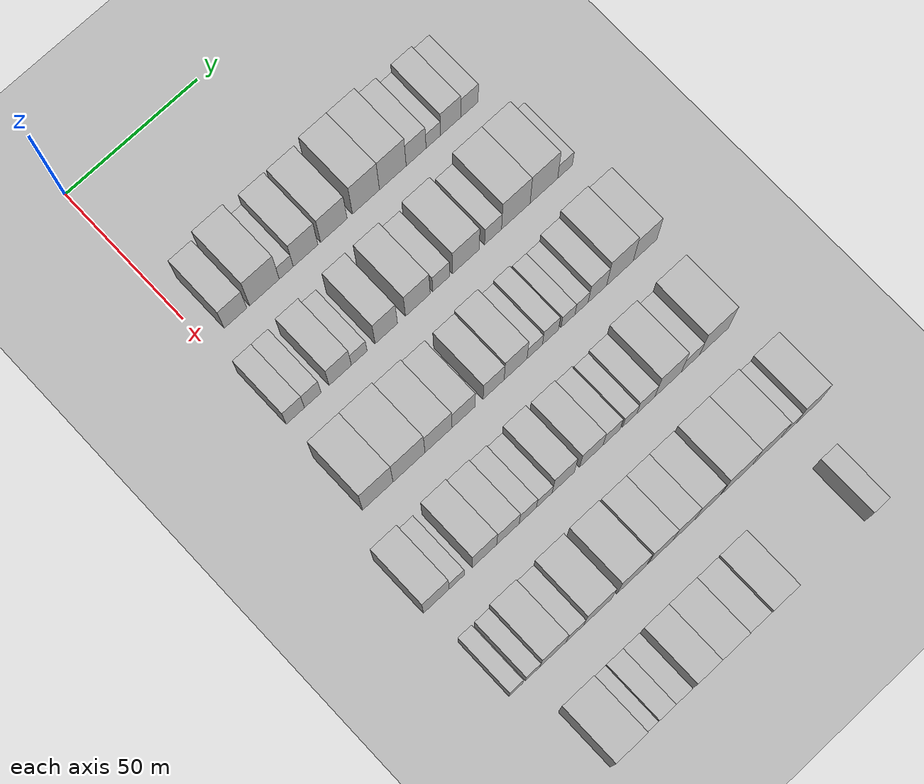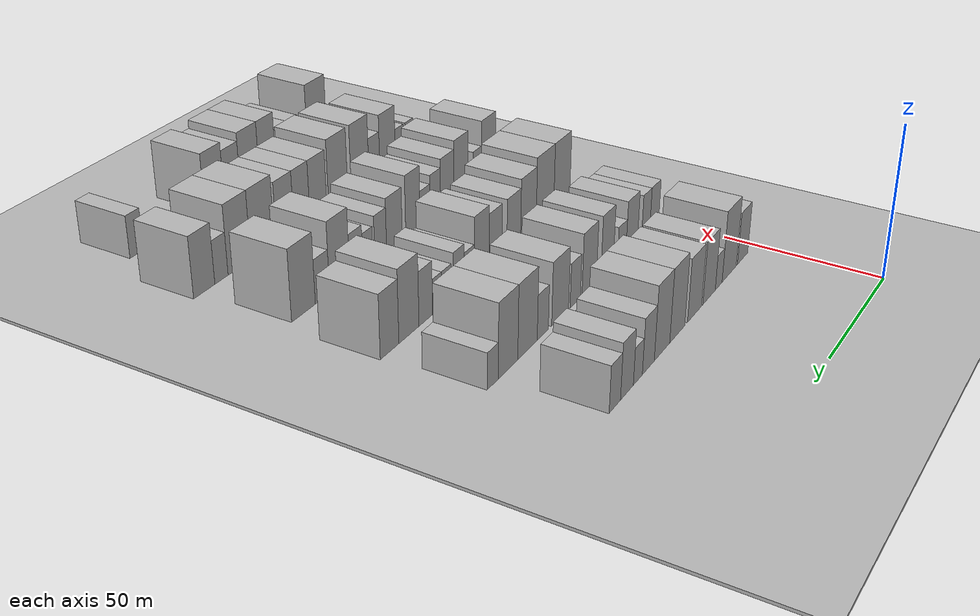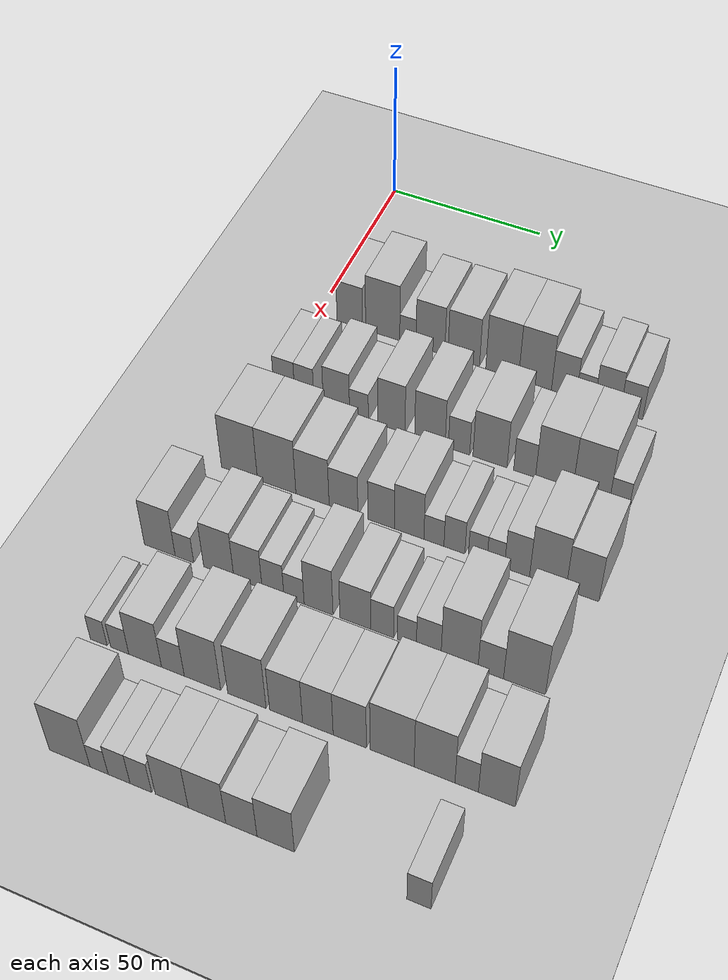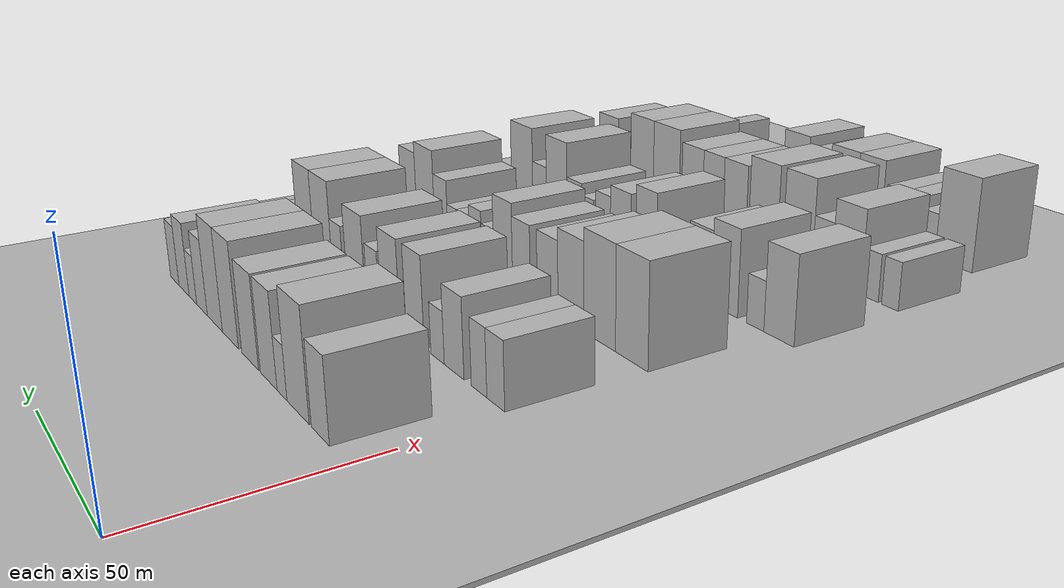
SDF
<sdf version="1.6">
 <world name="default">
  <include><name>ground_plane_1</name><uri>model://HANNAS_ground_plane</uri></include>
  <include>
   <name>ground_plane_2</name>
   <uri>model://HANNAS_ground_plane</uri>
   <pose>100 0 0  0 0 0</pose>
  </include>
  <model name="building_58">
   <static>1</static>
   <pose>50.0000 10.9286 0 0.000000 0.000000 0.000000</pose>
   <link name="link">
    <pose>0 0 9.00 0 0 0</pose>
    <collision name="collision"><geometry><box><size>20.0000 8.4834 18.0000</size></box></geometry></collision>
    <visual name="visual">
     <cast_shadows>0</cast_shadows>
     <geometry><box><size>20.0000 8.4834 18.0000</size></box></geometry>
     <material>
      <script>
       <uri>model://HANNAS_wall/materials/scripts</uri>
       <uri>model://HANNAS_wall/materials/textures</uri>
       <name>vrc/HANNAS_wall</name>
      </script>
     </material>
    </visual>
   </link>
  </model>
  <model name="building_59">
   <static>1</static>
   <pose>50.0000 21.7651 0 0.000000 0.000000 0.000000</pose>
   <link name="link">
    <pose>0 0 12.00 0 0 0</pose>
    <collision name="collision"><geometry><box><size>20.0000 11.1896 24.0000</size></box></geometry></collision>
    <visual name="visual">
     <cast_shadows>0</cast_shadows>
     <geometry><box><size>20.0000 11.1896 24.0000</size></box></geometry>
     <material>
      <script>
       <uri>model://HANNAS_wall/materials/scripts</uri>
       <uri>model://HANNAS_wall/materials/textures</uri>
       <name>vrc/HANNAS_wall</name>
      </script>
     </material>
    </visual>
   </link>
  </model>
  <model name="building_60">
   <static>1</static>
   <pose>50.0000 29.9903 0 0.000000 0.000000 0.000000</pose>
   <link name="link">
    <pose>0 0 6.00 0 0 0</pose>
    <collision name="collision"><geometry><box><size>20.0000 5.2607 12.0000</size></box></geometry></collision>
    <visual name="visual">
     <cast_shadows>0</cast_shadows>
     <geometry><box><size>20.0000 5.2607 12.0000</size></box></geometry>
     <material>
      <script>
       <uri>model://HANNAS_wall/materials/scripts</uri>
       <uri>model://HANNAS_wall/materials/textures</uri>
       <name>vrc/HANNAS_wall</name>
      </script>
     </material>
    </visual>
   </link>
  </model>
  <model name="building_61">
   <static>1</static>
   <pose>50.0000 37.2920 0 0.000000 0.000000 0.000000</pose>
   <link name="link">
    <pose>0 0 10.50 0 0 0</pose>
    <collision name="collision"><geometry><box><size>20.0000 9.3428 21.0000</size></box></geometry></collision>
    <visual name="visual">
     <cast_shadows>0</cast_shadows>
     <geometry><box><size>20.0000 9.3428 21.0000</size></box></geometry>
     <material>
      <script>
       <uri>model://HANNAS_wall/materials/scripts</uri>
       <uri>model://HANNAS_wall/materials/textures</uri>
       <name>vrc/HANNAS_wall</name>
      </script>
     </material>
    </visual>
   </link>
  </model>
  <model name="building_62">
   <static>1</static>
   <pose>50.0000 48.0219 0 0.000000 0.000000 0.000000</pose>
   <link name="link">
    <pose>0 0 10.50 0 0 0</pose>
    <collision name="collision"><geometry><box><size>20.0000 10.1169 21.0000</size></box></geometry></collision>
    <visual name="visual">
     <cast_shadows>0</cast_shadows>
     <geometry><box><size>20.0000 10.1169 21.0000</size></box></geometry>
     <material>
      <script>
       <uri>model://HANNAS_wall/materials/scripts</uri>
       <uri>model://HANNAS_wall/materials/textures</uri>
       <name>vrc/HANNAS_wall</name>
      </script>
     </material>
    </visual>
   </link>
  </model>
  <model name="building_63">
   <static>1</static>
   <pose>50.0000 60.2649 0 0.000000 0.000000 0.000000</pose>
   <link name="link">
    <pose>0 0 12.00 0 0 0</pose>
    <collision name="collision"><geometry><box><size>20.0000 10.3690 24.0000</size></box></geometry></collision>
    <visual name="visual">
     <cast_shadows>0</cast_shadows>
     <geometry><box><size>20.0000 10.3690 24.0000</size></box></geometry>
     <material>
      <script>
       <uri>model://HANNAS_wall/materials/scripts</uri>
       <uri>model://HANNAS_wall/materials/textures</uri>
       <name>vrc/HANNAS_wall</name>
      </script>
     </material>
    </visual>
   </link>
  </model>
  <model name="building_64">
   <static>1</static>
   <pose>50.0000 70.5920 0 0.000000 0.000000 0.000000</pose>
   <link name="link">
    <pose>0 0 12.00 0 0 0</pose>
    <collision name="collision"><geometry><box><size>20.0000 10.2853 24.0000</size></box></geometry></collision>
    <visual name="visual">
     <cast_shadows>0</cast_shadows>
     <geometry><box><size>20.0000 10.2853 24.0000</size></box></geometry>
     <material>
      <script>
       <uri>model://HANNAS_wall/materials/scripts</uri>
       <uri>model://HANNAS_wall/materials/textures</uri>
       <name>vrc/HANNAS_wall</name>
      </script>
     </material>
    </visual>
   </link>
  </model>
  <model name="building_65">
   <static>1</static>
   <pose>50.0000 79.5805 0 0.000000 0.000000 0.000000</pose>
   <link name="link">
    <pose>0 0 9.00 0 0 0</pose>
    <collision name="collision"><geometry><box><size>20.0000 7.6918 18.0000</size></box></geometry></collision>
    <visual name="visual">
     <cast_shadows>0</cast_shadows>
     <geometry><box><size>20.0000 7.6918 18.0000</size></box></geometry>
     <material>
      <script>
       <uri>model://HANNAS_wall/materials/scripts</uri>
       <uri>model://HANNAS_wall/materials/textures</uri>
       <name>vrc/HANNAS_wall</name>
      </script>
     </material>
    </visual>
   </link>
  </model>
  <model name="building_66">
   <static>1</static>
   <pose>50.0000 86.2436 0 0.000000 0.000000 0.000000</pose>
   <link name="link">
    <pose>0 0 6.00 0 0 0</pose>
    <collision name="collision"><geometry><box><size>20.0000 5.6342 12.0000</size></box></geometry></collision>
    <visual name="visual">
     <cast_shadows>0</cast_shadows>
     <geometry><box><size>20.0000 5.6342 12.0000</size></box></geometry>
     <material>
      <script>
       <uri>model://HANNAS_wall/materials/scripts</uri>
       <uri>model://HANNAS_wall/materials/textures</uri>
       <name>vrc/HANNAS_wall</name>
      </script>
     </material>
    </visual>
   </link>
  </model>
  <model name="building_67">
   <static>1</static>
   <pose>50.0000 92.9913 0 0.000000 0.000000 0.000000</pose>
   <link name="link">
    <pose>0 0 9.00 0 0 0</pose>
    <collision name="collision"><geometry><box><size>20.0000 7.8613 18.0000</size></box></geometry></collision>
    <visual name="visual">
     <cast_shadows>0</cast_shadows>
     <geometry><box><size>20.0000 7.8613 18.0000</size></box></geometry>
     <material>
      <script>
       <uri>model://HANNAS_wall/materials/scripts</uri>
       <uri>model://HANNAS_wall/materials/textures</uri>
       <name>vrc/HANNAS_wall</name>
      </script>
     </material>
    </visual>
   </link>
  </model>
  <model name="building_68">
   <static>1</static>
   <pose>50.0000 100.3003 0 0.000000 0.000000 0.000000</pose>
   <link name="link">
    <pose>0 0 7.50 0 0 0</pose>
    <collision name="collision"><geometry><box><size>20.0000 6.7567 15.0000</size></box></geometry></collision>
    <visual name="visual">
     <cast_shadows>0</cast_shadows>
     <geometry><box><size>20.0000 6.7567 15.0000</size></box></geometry>
     <material>
      <script>
       <uri>model://HANNAS_wall/materials/scripts</uri>
       <uri>model://HANNAS_wall/materials/textures</uri>
       <name>vrc/HANNAS_wall</name>
      </script>
     </material>
    </visual>
   </link>
  </model>
  <model name="building_179">
   <static>1</static>
   <pose>82.0000 4.3545 0 0.000000 0.000000 0.000000</pose>
   <link name="link">
    <pose>0 0 7.50 0 0 0</pose>
    <collision name="collision"><geometry><box><size>20.0000 6.8040 15.0000</size></box></geometry></collision>
    <visual name="visual">
     <cast_shadows>0</cast_shadows>
     <geometry><box><size>20.0000 6.8040 15.0000</size></box></geometry>
     <material>
      <script>
       <uri>model://HANNAS_wall/materials/scripts</uri>
       <uri>model://HANNAS_wall/materials/textures</uri>
       <name>vrc/HANNAS_wall</name>
      </script>
     </material>
    </visual>
   </link>
  </model>
  <model name="building_180">
   <static>1</static>
   <pose>82.0000 10.8505 0 0.000000 0.000000 0.000000</pose>
   <link name="link">
    <pose>0 0 7.50 0 0 0</pose>
    <collision name="collision"><geometry><box><size>20.0000 6.1879 15.0000</size></box></geometry></collision>
    <visual name="visual">
     <cast_shadows>0</cast_shadows>
     <geometry><box><size>20.0000 6.1879 15.0000</size></box></geometry>
     <material>
      <script>
       <uri>model://HANNAS_wall/materials/scripts</uri>
       <uri>model://HANNAS_wall/materials/textures</uri>
       <name>vrc/HANNAS_wall</name>
      </script>
     </material>
    </visual>
   </link>
  </model>
  <model name="building_181">
   <static>1</static>
   <pose>82.0000 21.1239 0 0.000000 0.000000 0.000000</pose>
   <link name="link">
    <pose>0 0 9.00 0 0 0</pose>
    <collision name="collision"><geometry><box><size>20.0000 8.3589 18.0000</size></box></geometry></collision>
    <visual name="visual">
     <cast_shadows>0</cast_shadows>
     <geometry><box><size>20.0000 8.3589 18.0000</size></box></geometry>
     <material>
      <script>
       <uri>model://HANNAS_wall/materials/scripts</uri>
       <uri>model://HANNAS_wall/materials/textures</uri>
       <name>vrc/HANNAS_wall</name>
      </script>
     </material>
    </visual>
   </link>
  </model>
  <model name="building_182">
   <static>1</static>
   <pose>82.0000 28.2773 0 0.000000 0.000000 0.000000</pose>
   <link name="link">
    <pose>0 0 6.00 0 0 0</pose>
    <collision name="collision"><geometry><box><size>20.0000 5.9480 12.0000</size></box></geometry></collision>
    <visual name="visual">
     <cast_shadows>0</cast_shadows>
     <geometry><box><size>20.0000 5.9480 12.0000</size></box></geometry>
     <material>
      <script>
       <uri>model://HANNAS_wall/materials/scripts</uri>
       <uri>model://HANNAS_wall/materials/textures</uri>
       <name>vrc/HANNAS_wall</name>
      </script>
     </material>
    </visual>
   </link>
  </model>
  <model name="building_183">
   <static>1</static>
   <pose>82.0000 38.4929 0 0.000000 0.000000 0.000000</pose>
   <link name="link">
    <pose>0 0 10.50 0 0 0</pose>
    <collision name="collision"><geometry><box><size>20.0000 8.4833 21.0000</size></box></geometry></collision>
    <visual name="visual">
     <cast_shadows>0</cast_shadows>
     <geometry><box><size>20.0000 8.4833 21.0000</size></box></geometry>
     <material>
      <script>
       <uri>model://HANNAS_wall/materials/scripts</uri>
       <uri>model://HANNAS_wall/materials/textures</uri>
       <name>vrc/HANNAS_wall</name>
      </script>
     </material>
    </visual>
   </link>
  </model>
  <model name="building_184">
   <static>1</static>
   <pose>82.0000 50.4450 0 0.000000 0.000000 0.000000</pose>
   <link name="link">
    <pose>0 0 10.50 0 0 0</pose>
    <collision name="collision"><geometry><box><size>20.0000 9.4210 21.0000</size></box></geometry></collision>
    <visual name="visual">
     <cast_shadows>0</cast_shadows>
     <geometry><box><size>20.0000 9.4210 21.0000</size></box></geometry>
     <material>
      <script>
       <uri>model://HANNAS_wall/materials/scripts</uri>
       <uri>model://HANNAS_wall/materials/textures</uri>
       <name>vrc/HANNAS_wall</name>
      </script>
     </material>
    </visual>
   </link>
  </model>
  <model name="building_185">
   <static>1</static>
   <pose>82.0000 59.4185 0 0.000000 0.000000 0.000000</pose>
   <link name="link">
    <pose>0 0 7.50 0 0 0</pose>
    <collision name="collision"><geometry><box><size>20.0000 6.5259 15.0000</size></box></geometry></collision>
    <visual name="visual">
     <cast_shadows>0</cast_shadows>
     <geometry><box><size>20.0000 6.5259 15.0000</size></box></geometry>
     <material>
      <script>
       <uri>model://HANNAS_wall/materials/scripts</uri>
       <uri>model://HANNAS_wall/materials/textures</uri>
       <name>vrc/HANNAS_wall</name>
      </script>
     </material>
    </visual>
   </link>
  </model>
  <model name="building_186">
   <static>1</static>
   <pose>82.0000 68.8511 0 0.000000 0.000000 0.000000</pose>
   <link name="link">
    <pose>0 0 10.50 0 0 0</pose>
    <collision name="collision"><geometry><box><size>20.0000 10.3394 21.0000</size></box></geometry></collision>
    <visual name="visual">
     <cast_shadows>0</cast_shadows>
     <geometry><box><size>20.0000 10.3394 21.0000</size></box></geometry>
     <material>
      <script>
       <uri>model://HANNAS_wall/materials/scripts</uri>
       <uri>model://HANNAS_wall/materials/textures</uri>
       <name>vrc/HANNAS_wall</name>
      </script>
     </material>
    </visual>
   </link>
  </model>
  <model name="building_187">
   <static>1</static>
   <pose>82.0000 79.2915 0 0.000000 0.000000 0.000000</pose>
   <link name="link">
    <pose>0 0 7.50 0 0 0</pose>
    <collision name="collision"><geometry><box><size>20.0000 6.5414 15.0000</size></box></geometry></collision>
    <visual name="visual">
     <cast_shadows>0</cast_shadows>
     <geometry><box><size>20.0000 6.5414 15.0000</size></box></geometry>
     <material>
      <script>
       <uri>model://HANNAS_wall/materials/scripts</uri>
       <uri>model://HANNAS_wall/materials/textures</uri>
       <name>vrc/HANNAS_wall</name>
      </script>
     </material>
    </visual>
   </link>
  </model>
  <model name="building_188">
   <static>1</static>
   <pose>82.0000 88.1043 0 0.000000 0.000000 0.000000</pose>
   <link name="link">
    <pose>0 0 12.00 0 0 0</pose>
    <collision name="collision"><geometry><box><size>20.0000 11.0843 24.0000</size></box></geometry></collision>
    <visual name="visual">
     <cast_shadows>0</cast_shadows>
     <geometry><box><size>20.0000 11.0843 24.0000</size></box></geometry>
     <material>
      <script>
       <uri>model://HANNAS_wall/materials/scripts</uri>
       <uri>model://HANNAS_wall/materials/textures</uri>
       <name>vrc/HANNAS_wall</name>
      </script>
     </material>
    </visual>
   </link>
  </model>
  <model name="building_189">
   <static>1</static>
   <pose>82.0000 99.0172 0 0.000000 0.000000 0.000000</pose>
   <link name="link">
    <pose>0 0 12.00 0 0 0</pose>
    <collision name="collision"><geometry><box><size>20.0000 10.7414 24.0000</size></box></geometry></collision>
    <visual name="visual">
     <cast_shadows>0</cast_shadows>
     <geometry><box><size>20.0000 10.7414 24.0000</size></box></geometry>
     <material>
      <script>
       <uri>model://HANNAS_wall/materials/scripts</uri>
       <uri>model://HANNAS_wall/materials/textures</uri>
       <name>vrc/HANNAS_wall</name>
      </script>
     </material>
    </visual>
   </link>
  </model>
  <model name="building_190">
   <static>1</static>
   <pose>82.0000 107.2730 0 0.000000 0.000000 0.000000</pose>
   <link name="link">
    <pose>0 0 6.00 0 0 0</pose>
    <collision name="collision"><geometry><box><size>20.0000 5.7701 12.0000</size></box></geometry></collision>
    <visual name="visual">
     <cast_shadows>0</cast_shadows>
     <geometry><box><size>20.0000 5.7701 12.0000</size></box></geometry>
     <material>
      <script>
       <uri>model://HANNAS_wall/materials/scripts</uri>
       <uri>model://HANNAS_wall/materials/textures</uri>
       <name>vrc/HANNAS_wall</name>
      </script>
     </material>
    </visual>
   </link>
  </model>
  <model name="building_303">
   <static>1</static>
   <pose>114.0000 5.7578 0 0.000000 0.000000 0.000000</pose>
   <link name="link">
    <pose>0 0 12.00 0 0 0</pose>
    <collision name="collision"><geometry><box><size>20.0000 11.3368 24.0000</size></box></geometry></collision>
    <visual name="visual">
     <cast_shadows>0</cast_shadows>
     <geometry><box><size>20.0000 11.3368 24.0000</size></box></geometry>
     <material>
      <script>
       <uri>model://HANNAS_wall/materials/scripts</uri>
       <uri>model://HANNAS_wall/materials/textures</uri>
       <name>vrc/HANNAS_wall</name>
      </script>
     </material>
    </visual>
   </link>
  </model>
  <model name="building_304">
   <static>1</static>
   <pose>114.0000 17.3869 0 0.000000 0.000000 0.000000</pose>
   <link name="link">
    <pose>0 0 12.00 0 0 0</pose>
    <collision name="collision"><geometry><box><size>20.0000 11.9214 24.0000</size></box></geometry></collision>
    <visual name="visual">
     <cast_shadows>0</cast_shadows>
     <geometry><box><size>20.0000 11.9214 24.0000</size></box></geometry>
     <material>
      <script>
       <uri>model://HANNAS_wall/materials/scripts</uri>
       <uri>model://HANNAS_wall/materials/textures</uri>
       <name>vrc/HANNAS_wall</name>
      </script>
     </material>
    </visual>
   </link>
  </model>
  <model name="building_305">
   <static>1</static>
   <pose>114.0000 28.4446 0 0.000000 0.000000 0.000000</pose>
   <link name="link">
    <pose>0 0 10.50 0 0 0</pose>
    <collision name="collision"><geometry><box><size>20.0000 10.1941 21.0000</size></box></geometry></collision>
    <visual name="visual">
     <cast_shadows>0</cast_shadows>
     <geometry><box><size>20.0000 10.1941 21.0000</size></box></geometry>
     <material>
      <script>
       <uri>model://HANNAS_wall/materials/scripts</uri>
       <uri>model://HANNAS_wall/materials/textures</uri>
       <name>vrc/HANNAS_wall</name>
      </script>
     </material>
    </visual>
   </link>
  </model>
  <model name="building_306">
   <static>1</static>
   <pose>114.0000 37.9192 0 0.000000 0.000000 0.000000</pose>
   <link name="link">
    <pose>0 0 9.00 0 0 0</pose>
    <collision name="collision"><geometry><box><size>20.0000 8.7550 18.0000</size></box></geometry></collision>
    <visual name="visual">
     <cast_shadows>0</cast_shadows>
     <geometry><box><size>20.0000 8.7550 18.0000</size></box></geometry>
     <material>
      <script>
       <uri>model://HANNAS_wall/materials/scripts</uri>
       <uri>model://HANNAS_wall/materials/textures</uri>
       <name>vrc/HANNAS_wall</name>
      </script>
     </material>
    </visual>
   </link>
  </model>
  <model name="building_307">
   <static>1</static>
   <pose>114.0000 49.2777 0 0.000000 0.000000 0.000000</pose>
   <link name="link">
    <pose>0 0 9.00 0 0 0</pose>
    <collision name="collision"><geometry><box><size>20.0000 7.9620 18.0000</size></box></geometry></collision>
    <visual name="visual">
     <cast_shadows>0</cast_shadows>
     <geometry><box><size>20.0000 7.9620 18.0000</size></box></geometry>
     <material>
      <script>
       <uri>model://HANNAS_wall/materials/scripts</uri>
       <uri>model://HANNAS_wall/materials/textures</uri>
       <name>vrc/HANNAS_wall</name>
      </script>
     </material>
    </visual>
   </link>
  </model>
  <model name="building_308">
   <static>1</static>
   <pose>114.0000 57.6244 0 0.000000 0.000000 0.000000</pose>
   <link name="link">
    <pose>0 0 10.50 0 0 0</pose>
    <collision name="collision"><geometry><box><size>20.0000 8.7314 21.0000</size></box></geometry></collision>
    <visual name="visual">
     <cast_shadows>0</cast_shadows>
     <geometry><box><size>20.0000 8.7314 21.0000</size></box></geometry>
     <material>
      <script>
       <uri>model://HANNAS_wall/materials/scripts</uri>
       <uri>model://HANNAS_wall/materials/textures</uri>
       <name>vrc/HANNAS_wall</name>
      </script>
     </material>
    </visual>
   </link>
  </model>
  <model name="building_309">
   <static>1</static>
   <pose>114.0000 64.9488 0 0.000000 0.000000 0.000000</pose>
   <link name="link">
    <pose>0 0 6.00 0 0 0</pose>
    <collision name="collision"><geometry><box><size>20.0000 5.9175 12.0000</size></box></geometry></collision>
    <visual name="visual">
     <cast_shadows>0</cast_shadows>
     <geometry><box><size>20.0000 5.9175 12.0000</size></box></geometry>
     <material>
      <script>
       <uri>model://HANNAS_wall/materials/scripts</uri>
       <uri>model://HANNAS_wall/materials/textures</uri>
       <name>vrc/HANNAS_wall</name>
      </script>
     </material>
    </visual>
   </link>
  </model>
  <model name="building_310">
   <static>1</static>
   <pose>114.0000 70.9758 0 0.000000 0.000000 0.000000</pose>
   <link name="link">
    <pose>0 0 7.50 0 0 0</pose>
    <collision name="collision"><geometry><box><size>20.0000 6.1365 15.0000</size></box></geometry></collision>
    <visual name="visual">
     <cast_shadows>0</cast_shadows>
     <geometry><box><size>20.0000 6.1365 15.0000</size></box></geometry>
     <material>
      <script>
       <uri>model://HANNAS_wall/materials/scripts</uri>
       <uri>model://HANNAS_wall/materials/textures</uri>
       <name>vrc/HANNAS_wall</name>
      </script>
     </material>
    </visual>
   </link>
  </model>
  <model name="building_311">
   <static>1</static>
   <pose>114.0000 77.7422 0 0.000000 0.000000 0.000000</pose>
   <link name="link">
    <pose>0 0 6.00 0 0 0</pose>
    <collision name="collision"><geometry><box><size>20.0000 5.3963 12.0000</size></box></geometry></collision>
    <visual name="visual">
     <cast_shadows>0</cast_shadows>
     <geometry><box><size>20.0000 5.3963 12.0000</size></box></geometry>
     <material>
      <script>
       <uri>model://HANNAS_wall/materials/scripts</uri>
       <uri>model://HANNAS_wall/materials/textures</uri>
       <name>vrc/HANNAS_wall</name>
      </script>
     </material>
    </visual>
   </link>
  </model>
  <model name="building_312">
   <static>1</static>
   <pose>114.0000 82.9609 0 0.000000 0.000000 0.000000</pose>
   <link name="link">
    <pose>0 0 6.00 0 0 0</pose>
    <collision name="collision"><geometry><box><size>20.0000 5.0409 12.0000</size></box></geometry></collision>
    <visual name="visual">
     <cast_shadows>0</cast_shadows>
     <geometry><box><size>20.0000 5.0409 12.0000</size></box></geometry>
     <material>
      <script>
       <uri>model://HANNAS_wall/materials/scripts</uri>
       <uri>model://HANNAS_wall/materials/textures</uri>
       <name>vrc/HANNAS_wall</name>
      </script>
     </material>
    </visual>
   </link>
  </model>
  <model name="building_313">
   <static>1</static>
   <pose>114.0000 89.0870 0 0.000000 0.000000 0.000000</pose>
   <link name="link">
    <pose>0 0 9.00 0 0 0</pose>
    <collision name="collision"><geometry><box><size>20.0000 7.2115 18.0000</size></box></geometry></collision>
    <visual name="visual">
     <cast_shadows>0</cast_shadows>
     <geometry><box><size>20.0000 7.2115 18.0000</size></box></geometry>
     <material>
      <script>
       <uri>model://HANNAS_wall/materials/scripts</uri>
       <uri>model://HANNAS_wall/materials/textures</uri>
       <name>vrc/HANNAS_wall</name>
      </script>
     </material>
    </visual>
   </link>
  </model>
  <model name="building_314">
   <static>1</static>
   <pose>114.0000 97.8611 0 0.000000 0.000000 0.000000</pose>
   <link name="link">
    <pose>0 0 12.00 0 0 0</pose>
    <collision name="collision"><geometry><box><size>20.0000 10.3366 24.0000</size></box></geometry></collision>
    <visual name="visual">
     <cast_shadows>0</cast_shadows>
     <geometry><box><size>20.0000 10.3366 24.0000</size></box></geometry>
     <material>
      <script>
       <uri>model://HANNAS_wall/materials/scripts</uri>
       <uri>model://HANNAS_wall/materials/textures</uri>
       <name>vrc/HANNAS_wall</name>
      </script>
     </material>
    </visual>
   </link>
  </model>
  <model name="building_315">
   <static>1</static>
   <pose>114.0000 107.6594 0 0.000000 0.000000 0.000000</pose>
   <link name="link">
    <pose>0 0 10.50 0 0 0</pose>
    <collision name="collision"><geometry><box><size>20.0000 9.2600 21.0000</size></box></geometry></collision>
    <visual name="visual">
     <cast_shadows>0</cast_shadows>
     <geometry><box><size>20.0000 9.2600 21.0000</size></box></geometry>
     <material>
      <script>
       <uri>model://HANNAS_wall/materials/scripts</uri>
       <uri>model://HANNAS_wall/materials/textures</uri>
       <name>vrc/HANNAS_wall</name>
      </script>
     </material>
    </visual>
   </link>
  </model>
  <model name="building_423">
   <static>1</static>
   <pose>146.0000 -2.3076 0 0.000000 0.000000 0.000000</pose>
   <link name="link">
    <pose>0 0 10.50 0 0 0</pose>
    <collision name="collision"><geometry><box><size>20.0000 9.4396 21.0000</size></box></geometry></collision>
    <visual name="visual">
     <cast_shadows>0</cast_shadows>
     <geometry><box><size>20.0000 9.4396 21.0000</size></box></geometry>
     <material>
      <script>
       <uri>model://HANNAS_wall/materials/scripts</uri>
       <uri>model://HANNAS_wall/materials/textures</uri>
       <name>vrc/HANNAS_wall</name>
      </script>
     </material>
    </visual>
   </link>
  </model>
  <model name="building_424">
   <static>1</static>
   <pose>146.0000 5.2485 0 0.000000 0.000000 0.000000</pose>
   <link name="link">
    <pose>0 0 6.00 0 0 0</pose>
    <collision name="collision"><geometry><box><size>20.0000 5.6727 12.0000</size></box></geometry></collision>
    <visual name="visual">
     <cast_shadows>0</cast_shadows>
     <geometry><box><size>20.0000 5.6727 12.0000</size></box></geometry>
     <material>
      <script>
       <uri>model://HANNAS_wall/materials/scripts</uri>
       <uri>model://HANNAS_wall/materials/textures</uri>
       <name>vrc/HANNAS_wall</name>
      </script>
     </material>
    </visual>
   </link>
  </model>
  <model name="building_425">
   <static>1</static>
   <pose>146.0000 15.6350 0 0.000000 0.000000 0.000000</pose>
   <link name="link">
    <pose>0 0 10.50 0 0 0</pose>
    <collision name="collision"><geometry><box><size>20.0000 9.1004 21.0000</size></box></geometry></collision>
    <visual name="visual">
     <cast_shadows>0</cast_shadows>
     <geometry><box><size>20.0000 9.1004 21.0000</size></box></geometry>
     <material>
      <script>
       <uri>model://HANNAS_wall/materials/scripts</uri>
       <uri>model://HANNAS_wall/materials/textures</uri>
       <name>vrc/HANNAS_wall</name>
      </script>
     </material>
    </visual>
   </link>
  </model>
  <model name="building_426">
   <static>1</static>
   <pose>146.0000 24.4052 0 0.000000 0.000000 0.000000</pose>
   <link name="link">
    <pose>0 0 9.00 0 0 0</pose>
    <collision name="collision"><geometry><box><size>20.0000 8.4401 18.0000</size></box></geometry></collision>
    <visual name="visual">
     <cast_shadows>0</cast_shadows>
     <geometry><box><size>20.0000 8.4401 18.0000</size></box></geometry>
     <material>
      <script>
       <uri>model://HANNAS_wall/materials/scripts</uri>
       <uri>model://HANNAS_wall/materials/textures</uri>
       <name>vrc/HANNAS_wall</name>
      </script>
     </material>
    </visual>
   </link>
  </model>
  <model name="building_427">
   <static>1</static>
   <pose>146.0000 31.8560 0 0.000000 0.000000 0.000000</pose>
   <link name="link">
    <pose>0 0 7.50 0 0 0</pose>
    <collision name="collision"><geometry><box><size>20.0000 6.4615 15.0000</size></box></geometry></collision>
    <visual name="visual">
     <cast_shadows>0</cast_shadows>
     <geometry><box><size>20.0000 6.4615 15.0000</size></box></geometry>
     <material>
      <script>
       <uri>model://HANNAS_wall/materials/scripts</uri>
       <uri>model://HANNAS_wall/materials/textures</uri>
       <name>vrc/HANNAS_wall</name>
      </script>
     </material>
    </visual>
   </link>
  </model>
  <model name="building_428">
   <static>1</static>
   <pose>146.0000 38.0572 0 0.000000 0.000000 0.000000</pose>
   <link name="link">
    <pose>0 0 6.00 0 0 0</pose>
    <collision name="collision"><geometry><box><size>20.0000 5.9409 12.0000</size></box></geometry></collision>
    <visual name="visual">
     <cast_shadows>0</cast_shadows>
     <geometry><box><size>20.0000 5.9409 12.0000</size></box></geometry>
     <material>
      <script>
       <uri>model://HANNAS_wall/materials/scripts</uri>
       <uri>model://HANNAS_wall/materials/textures</uri>
       <name>vrc/HANNAS_wall</name>
      </script>
     </material>
    </visual>
   </link>
  </model>
  <model name="building_429">
   <static>1</static>
   <pose>146.0000 45.2358 0 0.000000 0.000000 0.000000</pose>
   <link name="link">
    <pose>0 0 10.50 0 0 0</pose>
    <collision name="collision"><geometry><box><size>20.0000 8.4164 21.0000</size></box></geometry></collision>
    <visual name="visual">
     <cast_shadows>0</cast_shadows>
     <geometry><box><size>20.0000 8.4164 21.0000</size></box></geometry>
     <material>
      <script>
       <uri>model://HANNAS_wall/materials/scripts</uri>
       <uri>model://HANNAS_wall/materials/textures</uri>
       <name>vrc/HANNAS_wall</name>
      </script>
     </material>
    </visual>
   </link>
  </model>
  <model name="building_430">
   <static>1</static>
   <pose>146.0000 55.8639 0 0.000000 0.000000 0.000000</pose>
   <link name="link">
    <pose>0 0 9.00 0 0 0</pose>
    <collision name="collision"><geometry><box><size>20.0000 8.8398 18.0000</size></box></geometry></collision>
    <visual name="visual">
     <cast_shadows>0</cast_shadows>
     <geometry><box><size>20.0000 8.8398 18.0000</size></box></geometry>
     <material>
      <script>
       <uri>model://HANNAS_wall/materials/scripts</uri>
       <uri>model://HANNAS_wall/materials/textures</uri>
       <name>vrc/HANNAS_wall</name>
      </script>
     </material>
    </visual>
   </link>
  </model>
  <model name="building_431">
   <static>1</static>
   <pose>146.0000 63.5435 0 0.000000 0.000000 0.000000</pose>
   <link name="link">
    <pose>0 0 7.50 0 0 0</pose>
    <collision name="collision"><geometry><box><size>20.0000 6.5194 15.0000</size></box></geometry></collision>
    <visual name="visual">
     <cast_shadows>0</cast_shadows>
     <geometry><box><size>20.0000 6.5194 15.0000</size></box></geometry>
     <material>
      <script>
       <uri>model://HANNAS_wall/materials/scripts</uri>
       <uri>model://HANNAS_wall/materials/textures</uri>
       <name>vrc/HANNAS_wall</name>
      </script>
     </material>
    </visual>
   </link>
  </model>
  <model name="building_432">
   <static>1</static>
   <pose>146.0000 70.5212 0 0.000000 0.000000 0.000000</pose>
   <link name="link">
    <pose>0 0 6.00 0 0 0</pose>
    <collision name="collision"><geometry><box><size>20.0000 5.4361 12.0000</size></box></geometry></collision>
    <visual name="visual">
     <cast_shadows>0</cast_shadows>
     <geometry><box><size>20.0000 5.4361 12.0000</size></box></geometry>
     <material>
      <script>
       <uri>model://HANNAS_wall/materials/scripts</uri>
       <uri>model://HANNAS_wall/materials/textures</uri>
       <name>vrc/HANNAS_wall</name>
      </script>
     </material>
    </visual>
   </link>
  </model>
  <model name="building_433">
   <static>1</static>
   <pose>146.0000 76.7083 0 0.000000 0.000000 0.000000</pose>
   <link name="link">
    <pose>0 0 7.50 0 0 0</pose>
    <collision name="collision"><geometry><box><size>20.0000 6.9381 15.0000</size></box></geometry></collision>
    <visual name="visual">
     <cast_shadows>0</cast_shadows>
     <geometry><box><size>20.0000 6.9381 15.0000</size></box></geometry>
     <material>
      <script>
       <uri>model://HANNAS_wall/materials/scripts</uri>
       <uri>model://HANNAS_wall/materials/textures</uri>
       <name>vrc/HANNAS_wall</name>
      </script>
     </material>
    </visual>
   </link>
  </model>
  <model name="building_434">
   <static>1</static>
   <pose>146.0000 85.3099 0 0.000000 0.000000 0.000000</pose>
   <link name="link">
    <pose>0 0 12.00 0 0 0</pose>
    <collision name="collision"><geometry><box><size>20.0000 10.2651 24.0000</size></box></geometry></collision>
    <visual name="visual">
     <cast_shadows>0</cast_shadows>
     <geometry><box><size>20.0000 10.2651 24.0000</size></box></geometry>
     <material>
      <script>
       <uri>model://HANNAS_wall/materials/scripts</uri>
       <uri>model://HANNAS_wall/materials/textures</uri>
       <name>vrc/HANNAS_wall</name>
      </script>
     </material>
    </visual>
   </link>
  </model>
  <model name="building_435">
   <static>1</static>
   <pose>146.0000 93.9695 0 0.000000 0.000000 0.000000</pose>
   <link name="link">
    <pose>0 0 7.50 0 0 0</pose>
    <collision name="collision"><geometry><box><size>20.0000 7.0540 15.0000</size></box></geometry></collision>
    <visual name="visual">
     <cast_shadows>0</cast_shadows>
     <geometry><box><size>20.0000 7.0540 15.0000</size></box></geometry>
     <material>
      <script>
       <uri>model://HANNAS_wall/materials/scripts</uri>
       <uri>model://HANNAS_wall/materials/textures</uri>
       <name>vrc/HANNAS_wall</name>
      </script>
     </material>
    </visual>
   </link>
  </model>
  <model name="building_436">
   <static>1</static>
   <pose>146.0000 103.1980 0 0.000000 0.000000 0.000000</pose>
   <link name="link">
    <pose>0 0 12.00 0 0 0</pose>
    <collision name="collision"><geometry><box><size>20.0000 11.4029 24.0000</size></box></geometry></collision>
    <visual name="visual">
     <cast_shadows>0</cast_shadows>
     <geometry><box><size>20.0000 11.4029 24.0000</size></box></geometry>
     <material>
      <script>
       <uri>model://HANNAS_wall/materials/scripts</uri>
       <uri>model://HANNAS_wall/materials/textures</uri>
       <name>vrc/HANNAS_wall</name>
      </script>
     </material>
    </visual>
   </link>
  </model>
  <model name="building_544">
   <static>1</static>
   <pose>178.0000 -2.9823 0 0.000000 0.000000 0.000000</pose>
   <link name="link">
    <pose>0 0 6.00 0 0 0</pose>
    <collision name="collision"><geometry><box><size>20.0000 5.0212 12.0000</size></box></geometry></collision>
    <visual name="visual">
     <cast_shadows>0</cast_shadows>
     <geometry><box><size>20.0000 5.0212 12.0000</size></box></geometry>
     <material>
      <script>
       <uri>model://HANNAS_wall/materials/scripts</uri>
       <uri>model://HANNAS_wall/materials/textures</uri>
       <name>vrc/HANNAS_wall</name>
      </script>
     </material>
    </visual>
   </link>
  </model>
  <model name="building_545">
   <static>1</static>
   <pose>178.0000 3.2228 0 0.000000 0.000000 0.000000</pose>
   <link name="link">
    <pose>0 0 6.00 0 0 0</pose>
    <collision name="collision"><geometry><box><size>20.0000 5.3890 12.0000</size></box></geometry></collision>
    <visual name="visual">
     <cast_shadows>0</cast_shadows>
     <geometry><box><size>20.0000 5.3890 12.0000</size></box></geometry>
     <material>
      <script>
       <uri>model://HANNAS_wall/materials/scripts</uri>
       <uri>model://HANNAS_wall/materials/textures</uri>
       <name>vrc/HANNAS_wall</name>
      </script>
     </material>
    </visual>
   </link>
  </model>
  <model name="building_546">
   <static>1</static>
   <pose>178.0000 10.7314 0 0.000000 0.000000 0.000000</pose>
   <link name="link">
    <pose>0 0 10.50 0 0 0</pose>
    <collision name="collision"><geometry><box><size>20.0000 9.6283 21.0000</size></box></geometry></collision>
    <visual name="visual">
     <cast_shadows>0</cast_shadows>
     <geometry><box><size>20.0000 9.6283 21.0000</size></box></geometry>
     <material>
      <script>
       <uri>model://HANNAS_wall/materials/scripts</uri>
       <uri>model://HANNAS_wall/materials/textures</uri>
       <name>vrc/HANNAS_wall</name>
      </script>
     </material>
    </visual>
   </link>
  </model>
  <model name="building_547">
   <static>1</static>
   <pose>178.0000 18.8402 0 0.000000 0.000000 0.000000</pose>
   <link name="link">
    <pose>0 0 7.50 0 0 0</pose>
    <collision name="collision"><geometry><box><size>20.0000 6.5893 15.0000</size></box></geometry></collision>
    <visual name="visual">
     <cast_shadows>0</cast_shadows>
     <geometry><box><size>20.0000 6.5893 15.0000</size></box></geometry>
     <material>
      <script>
       <uri>model://HANNAS_wall/materials/scripts</uri>
       <uri>model://HANNAS_wall/materials/textures</uri>
       <name>vrc/HANNAS_wall</name>
      </script>
     </material>
    </visual>
   </link>
  </model>
  <model name="building_548">
   <static>1</static>
   <pose>178.0000 27.3813 0 0.000000 0.000000 0.000000</pose>
   <link name="link">
    <pose>0 0 12.00 0 0 0</pose>
    <collision name="collision"><geometry><box><size>20.0000 10.4929 24.0000</size></box></geometry></collision>
    <visual name="visual">
     <cast_shadows>0</cast_shadows>
     <geometry><box><size>20.0000 10.4929 24.0000</size></box></geometry>
     <material>
      <script>
       <uri>model://HANNAS_wall/materials/scripts</uri>
       <uri>model://HANNAS_wall/materials/textures</uri>
       <name>vrc/HANNAS_wall</name>
      </script>
     </material>
    </visual>
   </link>
  </model>
  <model name="building_549">
   <static>1</static>
   <pose>178.0000 40.0598 0 0.000000 0.000000 0.000000</pose>
   <link name="link">
    <pose>0 0 12.00 0 0 0</pose>
    <collision name="collision"><geometry><box><size>20.0000 10.8640 24.0000</size></box></geometry></collision>
    <visual name="visual">
     <cast_shadows>0</cast_shadows>
     <geometry><box><size>20.0000 10.8640 24.0000</size></box></geometry>
     <material>
      <script>
       <uri>model://HANNAS_wall/materials/scripts</uri>
       <uri>model://HANNAS_wall/materials/textures</uri>
       <name>vrc/HANNAS_wall</name>
      </script>
     </material>
    </visual>
   </link>
  </model>
  <model name="building_550">
   <static>1</static>
   <pose>178.0000 51.0987 0 0.000000 0.000000 0.000000</pose>
   <link name="link">
    <pose>0 0 10.50 0 0 0</pose>
    <collision name="collision"><geometry><box><size>20.0000 9.2138 21.0000</size></box></geometry></collision>
    <visual name="visual">
     <cast_shadows>0</cast_shadows>
     <geometry><box><size>20.0000 9.2138 21.0000</size></box></geometry>
     <material>
      <script>
       <uri>model://HANNAS_wall/materials/scripts</uri>
       <uri>model://HANNAS_wall/materials/textures</uri>
       <name>vrc/HANNAS_wall</name>
      </script>
     </material>
    </visual>
   </link>
  </model>
  <model name="building_551">
   <static>1</static>
   <pose>178.0000 59.9369 0 0.000000 0.000000 0.000000</pose>
   <link name="link">
    <pose>0 0 10.50 0 0 0</pose>
    <collision name="collision"><geometry><box><size>20.0000 8.4628 21.0000</size></box></geometry></collision>
    <visual name="visual">
     <cast_shadows>0</cast_shadows>
     <geometry><box><size>20.0000 8.4628 21.0000</size></box></geometry>
     <material>
      <script>
       <uri>model://HANNAS_wall/materials/scripts</uri>
       <uri>model://HANNAS_wall/materials/textures</uri>
       <name>vrc/HANNAS_wall</name>
      </script>
     </material>
    </visual>
   </link>
  </model>
  <model name="building_552">
   <static>1</static>
   <pose>178.0000 68.7205 0 0.000000 0.000000 0.000000</pose>
   <link name="link">
    <pose>0 0 10.50 0 0 0</pose>
    <collision name="collision"><geometry><box><size>20.0000 9.1043 21.0000</size></box></geometry></collision>
    <visual name="visual">
     <cast_shadows>0</cast_shadows>
     <geometry><box><size>20.0000 9.1043 21.0000</size></box></geometry>
     <material>
      <script>
       <uri>model://HANNAS_wall/materials/scripts</uri>
       <uri>model://HANNAS_wall/materials/textures</uri>
       <name>vrc/HANNAS_wall</name>
      </script>
     </material>
    </visual>
   </link>
  </model>
  <model name="building_553">
   <static>1</static>
   <pose>178.0000 80.2047 0 0.000000 0.000000 0.000000</pose>
   <link name="link">
    <pose>0 0 12.00 0 0 0</pose>
    <collision name="collision"><geometry><box><size>20.0000 11.8642 24.0000</size></box></geometry></collision>
    <visual name="visual">
     <cast_shadows>0</cast_shadows>
     <geometry><box><size>20.0000 11.8642 24.0000</size></box></geometry>
     <material>
      <script>
       <uri>model://HANNAS_wall/materials/scripts</uri>
       <uri>model://HANNAS_wall/materials/textures</uri>
       <name>vrc/HANNAS_wall</name>
      </script>
     </material>
    </visual>
   </link>
  </model>
  <model name="building_554">
   <static>1</static>
   <pose>178.0000 91.5740 0 0.000000 0.000000 0.000000</pose>
   <link name="link">
    <pose>0 0 12.00 0 0 0</pose>
    <collision name="collision"><geometry><box><size>20.0000 10.8744 24.0000</size></box></geometry></collision>
    <visual name="visual">
     <cast_shadows>0</cast_shadows>
     <geometry><box><size>20.0000 10.8744 24.0000</size></box></geometry>
     <material>
      <script>
       <uri>model://HANNAS_wall/materials/scripts</uri>
       <uri>model://HANNAS_wall/materials/textures</uri>
       <name>vrc/HANNAS_wall</name>
      </script>
     </material>
    </visual>
   </link>
  </model>
  <model name="building_555">
   <static>1</static>
   <pose>178.0000 100.0937 0 0.000000 0.000000 0.000000</pose>
   <link name="link">
    <pose>0 0 7.50 0 0 0</pose>
    <collision name="collision"><geometry><box><size>20.0000 6.1650 15.0000</size></box></geometry></collision>
    <visual name="visual">
     <cast_shadows>0</cast_shadows>
     <geometry><box><size>20.0000 6.1650 15.0000</size></box></geometry>
     <material>
      <script>
       <uri>model://HANNAS_wall/materials/scripts</uri>
       <uri>model://HANNAS_wall/materials/textures</uri>
       <name>vrc/HANNAS_wall</name>
      </script>
     </material>
    </visual>
   </link>
  </model>
  <model name="building_556">
   <static>1</static>
   <pose>178.0000 107.9898 0 0.000000 0.000000 0.000000</pose>
   <link name="link">
    <pose>0 0 10.50 0 0 0</pose>
    <collision name="collision"><geometry><box><size>20.0000 9.6271 21.0000</size></box></geometry></collision>
    <visual name="visual">
     <cast_shadows>0</cast_shadows>
     <geometry><box><size>20.0000 9.6271 21.0000</size></box></geometry>
     <material>
      <script>
       <uri>model://HANNAS_wall/materials/scripts</uri>
       <uri>model://HANNAS_wall/materials/textures</uri>
       <name>vrc/HANNAS_wall</name>
      </script>
     </material>
    </visual>
   </link>
  </model>
  <model name="building_663">
   <static>1</static>
   <pose>210.0000 7.0579 0 0.000000 0.000000 0.000000</pose>
   <link name="link">
    <pose>0 0 12.00 0 0 0</pose>
    <collision name="collision"><geometry><box><size>20.0000 11.5448 24.0000</size></box></geometry></collision>
    <visual name="visual">
     <cast_shadows>0</cast_shadows>
     <geometry><box><size>20.0000 11.5448 24.0000</size></box></geometry>
     <material>
      <script>
       <uri>model://HANNAS_wall/materials/scripts</uri>
       <uri>model://HANNAS_wall/materials/textures</uri>
       <name>vrc/HANNAS_wall</name>
      </script>
     </material>
    </visual>
   </link>
  </model>
  <model name="building_664">
   <static>1</static>
   <pose>210.0000 15.3866 0 0.000000 0.000000 0.000000</pose>
   <link name="link">
    <pose>0 0 6.00 0 0 0</pose>
    <collision name="collision"><geometry><box><size>20.0000 5.1125 12.0000</size></box></geometry></collision>
    <visual name="visual">
     <cast_shadows>0</cast_shadows>
     <geometry><box><size>20.0000 5.1125 12.0000</size></box></geometry>
     <material>
      <script>
       <uri>model://HANNAS_wall/materials/scripts</uri>
       <uri>model://HANNAS_wall/materials/textures</uri>
       <name>vrc/HANNAS_wall</name>
      </script>
     </material>
    </visual>
   </link>
  </model>
  <model name="building_665">
   <static>1</static>
   <pose>210.0000 21.0057 0 0.000000 0.000000 0.000000</pose>
   <link name="link">
    <pose>0 0 7.50 0 0 0</pose>
    <collision name="collision"><geometry><box><size>20.0000 6.1257 15.0000</size></box></geometry></collision>
    <visual name="visual">
     <cast_shadows>0</cast_shadows>
     <geometry><box><size>20.0000 6.1257 15.0000</size></box></geometry>
     <material>
      <script>
       <uri>model://HANNAS_wall/materials/scripts</uri>
       <uri>model://HANNAS_wall/materials/textures</uri>
       <name>vrc/HANNAS_wall</name>
      </script>
     </material>
    </visual>
   </link>
  </model>
  <model name="building_666">
   <static>1</static>
   <pose>210.0000 27.0783 0 0.000000 0.000000 0.000000</pose>
   <link name="link">
    <pose>0 0 7.50 0 0 0</pose>
    <collision name="collision"><geometry><box><size>20.0000 6.0195 15.0000</size></box></geometry></collision>
    <visual name="visual">
     <cast_shadows>0</cast_shadows>
     <geometry><box><size>20.0000 6.0195 15.0000</size></box></geometry>
     <material>
      <script>
       <uri>model://HANNAS_wall/materials/scripts</uri>
       <uri>model://HANNAS_wall/materials/textures</uri>
       <name>vrc/HANNAS_wall</name>
      </script>
     </material>
    </visual>
   </link>
  </model>
  <model name="building_667">
   <static>1</static>
   <pose>210.0000 35.6226 0 0.000000 0.000000 0.000000</pose>
   <link name="link">
    <pose>0 0 10.50 0 0 0</pose>
    <collision name="collision"><geometry><box><size>20.0000 9.0692 21.0000</size></box></geometry></collision>
    <visual name="visual">
     <cast_shadows>0</cast_shadows>
     <geometry><box><size>20.0000 9.0692 21.0000</size></box></geometry>
     <material>
      <script>
       <uri>model://HANNAS_wall/materials/scripts</uri>
       <uri>model://HANNAS_wall/materials/textures</uri>
       <name>vrc/HANNAS_wall</name>
      </script>
     </material>
    </visual>
   </link>
  </model>
  <model name="building_668">
   <static>1</static>
   <pose>210.0000 45.2610 0 0.000000 0.000000 0.000000</pose>
   <link name="link">
    <pose>0 0 10.50 0 0 0</pose>
    <collision name="collision"><geometry><box><size>20.0000 10.2076 21.0000</size></box></geometry></collision>
    <visual name="visual">
     <cast_shadows>0</cast_shadows>
     <geometry><box><size>20.0000 10.2076 21.0000</size></box></geometry>
     <material>
      <script>
       <uri>model://HANNAS_wall/materials/scripts</uri>
       <uri>model://HANNAS_wall/materials/textures</uri>
       <name>vrc/HANNAS_wall</name>
      </script>
     </material>
    </visual>
   </link>
  </model>
  <model name="building_669">
   <static>1</static>
   <pose>210.0000 54.5647 0 0.000000 0.000000 0.000000</pose>
   <link name="link">
    <pose>0 0 9.00 0 0 0</pose>
    <collision name="collision"><geometry><box><size>20.0000 8.3997 18.0000</size></box></geometry></collision>
    <visual name="visual">
     <cast_shadows>0</cast_shadows>
     <geometry><box><size>20.0000 8.3997 18.0000</size></box></geometry>
     <material>
      <script>
       <uri>model://HANNAS_wall/materials/scripts</uri>
       <uri>model://HANNAS_wall/materials/textures</uri>
       <name>vrc/HANNAS_wall</name>
      </script>
     </material>
    </visual>
   </link>
  </model>
  <model name="building_670">
   <static>1</static>
   <pose>210.0000 63.7296 0 0.000000 0.000000 0.000000</pose>
   <link name="link">
    <pose>0 0 10.50 0 0 0</pose>
    <collision name="collision"><geometry><box><size>20.0000 9.9301 21.0000</size></box></geometry></collision>
    <visual name="visual">
     <cast_shadows>0</cast_shadows>
     <geometry><box><size>20.0000 9.9301 21.0000</size></box></geometry>
     <material>
      <script>
       <uri>model://HANNAS_wall/materials/scripts</uri>
       <uri>model://HANNAS_wall/materials/textures</uri>
       <name>vrc/HANNAS_wall</name>
      </script>
     </material>
    </visual>
   </link>
  </model>
  <model name="building_671">
   <static>1</static>
   <pose>210.0000 100.8823 0 0.000000 0.000000 0.000000</pose>
   <link name="link">
    <pose>0 0 7.50 0 0 0</pose>
    <collision name="collision"><geometry><box><size>20.0000 6.1251 15.0000</size></box></geometry></collision>
    <visual name="visual">
     <cast_shadows>0</cast_shadows>
     <geometry><box><size>20.0000 6.1251 15.0000</size></box></geometry>
     <material>
      <script>
       <uri>model://HANNAS_wall/materials/scripts</uri>
       <uri>model://HANNAS_wall/materials/textures</uri>
       <name>vrc/HANNAS_wall</name>
      </script>
     </material>
    </visual>
   </link>
  </model>
 </world>
</sdf>
